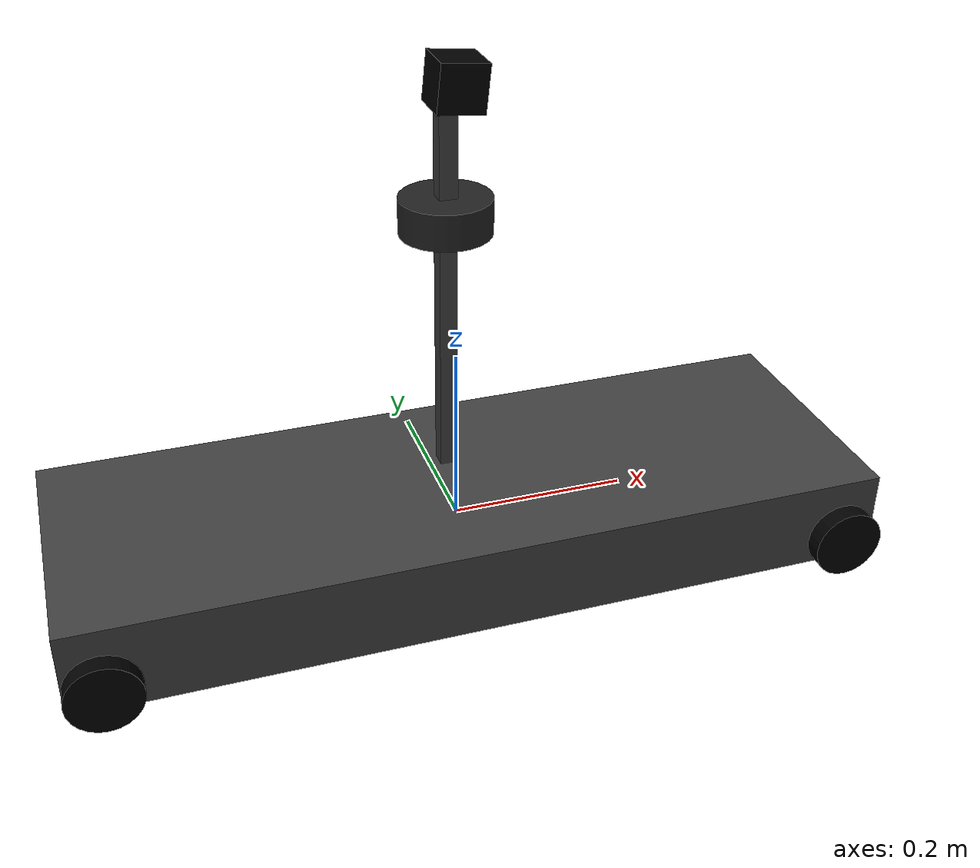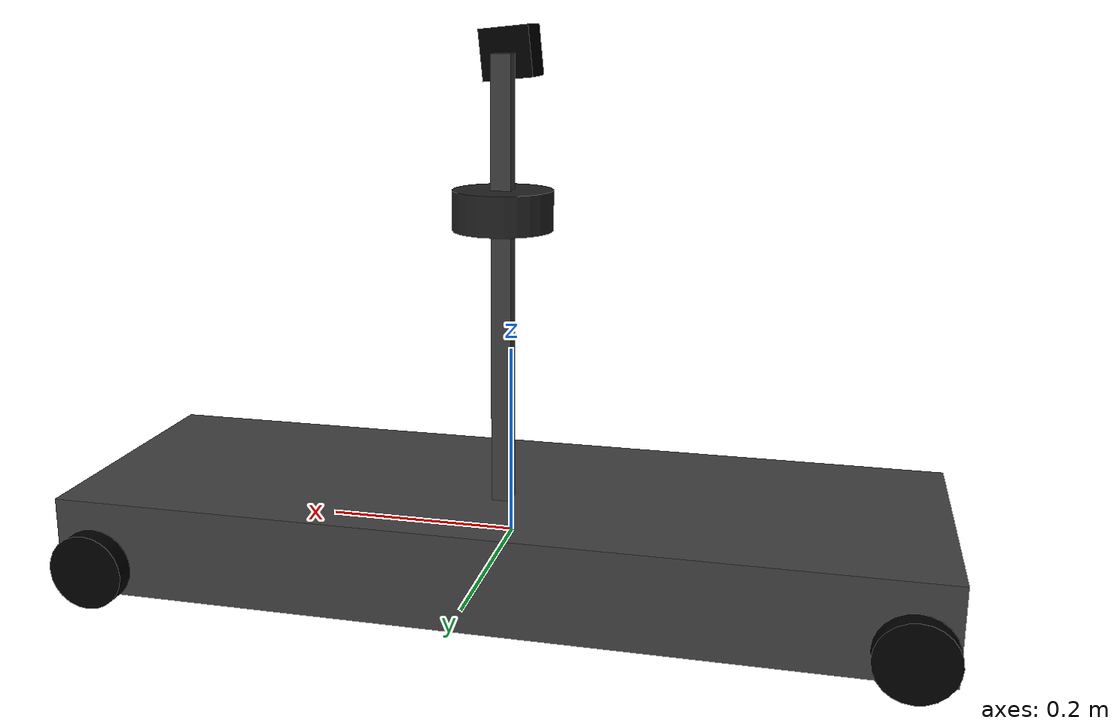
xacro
<?xml version="1.0"?>

<robot name="ackermann_steering_vehicle" xmlns:xacro="http://www.ros.org/wiki/xacro">

  <!-- Arguments -->
  <xacro:arg name="body_length" default="0.9" />
  <xacro:arg name="body_width" default="0.3" />
  <xacro:arg name="body_height" default="0.1" />
  <xacro:arg name="body_density" default="1000.0" />
  <xacro:arg name="wheel_radius" default="0.04" />
  <xacro:arg name="wheel_width" default="0.02" />
  <xacro:arg name="wheel_density" default="1000.0" />
  <xacro:arg name="max_steering_angle" default="0.6108" />
  <xacro:arg name="max_steering_angular_velocity" default="1.570796" />
  <xacro:arg name="max_steering_effort" default="1.0" />
  <xacro:arg name="max_velocity" default="1.0" />
  <xacro:arg name="max_effort" default="10.0" />
  <xacro:arg name="camera_box_size" default="0.05" />
  <xacro:arg name="camera_stick_size" default="0.02" />
  <xacro:arg name="camera_height" default="0.5" />
  <xacro:arg name="camera_pitch" default="0.1" />
  <xacro:arg name="camera_fov" default="90" />
  <xacro:arg name="camera_fps" default="30" />
  <xacro:arg name="image_width" default="640" />
  <xacro:arg name="image_height" default="480" />

  <!-- Mathematical Constants -->
  <xacro:property name="PI" value="3.14159265"/>

  <!-- Vehicle Properties -->
  <xacro:property name="body_length" value="$(arg body_length)"/>
  <xacro:property name="body_width" value="$(arg body_width)"/>
  <xacro:property name="body_height" value="$(arg body_height)"/>
  <xacro:property name="body_density" value="$(arg body_density)"/>
  <xacro:property name="wheel_radius" value="$(arg wheel_radius)"/>
  <xacro:property name="wheel_width" value="$(arg wheel_width)"/>
  <xacro:property name="wheel_density" value="$(arg wheel_density)"/>
  <xacro:property name="max_steering_angle" value="$(arg max_steering_angle)"/>
  <xacro:property name="max_steering_angular_velocity" value="$(arg max_steering_angular_velocity)"/>
  <xacro:property name="max_steering_effort" value="$(arg max_steering_effort)"/>
  <xacro:property name="max_velocity" value="$(arg max_velocity)"/>
  <xacro:property name="max_effort" value="$(arg max_effort)"/>
  <xacro:property name="camera_box_size" value="$(arg camera_box_size)"/>
  <xacro:property name="camera_stick_size" value="$(arg camera_stick_size)"/>
  <xacro:property name="camera_height" value="$(arg camera_height)"/>
  <xacro:property name="camera_pitch" value="$(arg camera_pitch)"/>
  <xacro:property name="camera_fov" value="$(arg camera_fov)"/>
  <xacro:property name="camera_fps" value="$(arg camera_fps)"/>
  <xacro:property name="image_width" value="$(arg image_width)"/>
  <xacro:property name="image_height" value="$(arg image_height)"/>

  <xacro:property name="body_mass" value="${body_density * body_length * body_height * body_width}"/>
  <xacro:property name="body_inertia_x" value="${1.0/12.0 * body_mass * (body_height*body_height + body_width*body_width)}"/>
  <xacro:property name="body_inertia_y" value="${1.0/12.0 * body_mass * (body_length*body_length + body_height*body_height)}"/>
  <xacro:property name="body_inertia_z" value="${1.0/12.0 * body_mass * (body_length*body_length + body_width*body_width)}"/>
  <xacro:property name="wheel_separation" value="${body_width + wheel_width}"/>
  <xacro:property name="wheel_offset" value="${body_length/2 - wheel_radius}"/>
  <xacro:property name="wheel_mass" value="${wheel_density * PI * wheel_radius * wheel_radius * wheel_width}"/>
  <xacro:property name="wheel_inertia_x" value="${1.0/12.0 * wheel_mass * (3*wheel_radius*wheel_radius + wheel_width*wheel_width)}"/>
  <xacro:property name="wheel_inertia_y" value="${1.0/12.0 * wheel_mass * (3*wheel_radius*wheel_radius + wheel_width*wheel_width)}"/>
  <xacro:property name="wheel_inertia_z" value="${1.0/2.0 * wheel_mass * wheel_radius * wheel_radius}"/>
  <xacro:property name="max_wheel_angular_velocity" value="${max_velocity / wheel_radius}"/>

  <!-- Links -->
  <xacro:include filename="inertial_macros.xacro" />
  <xacro:include filename="laser.xacro" />
  <xacro:include filename="lidar.xacro" />

  <!-- Body Link -->
  <link name="body_link">
    <visual>
      <origin xyz="0.0 0.0 0.0" rpy="0.0 0.0 0.0"/>
      <geometry>
        <box size="${body_length} ${body_width} ${body_height}"/>
      </geometry>
      <material name="body_material">
        <color rgba="0.25 0.25 0.25 1.0"/>
      </material>
    </visual>
    <collision>
      <origin xyz="0.0 0.0 0.0" rpy="0.0 0.0 0.0"/>
      <geometry>
        <box size="${body_length} ${body_width} ${body_height}"/>
      </geometry>
    </collision>
    <inertial>
      <mass value="${body_mass}"/>
      <inertia ixx="${body_inertia_x}" ixy="0.0" ixz="0.0" iyy="${body_inertia_y}" iyz="0" izz="${body_inertia_z}"/>
      <origin xyz="0 0 0" rpy="0 0 0"/>
    </inertial>
  </link>

  <!-- Front Left Wheel -->
  <link name="front_left_wheel_link">
    <visual>
      <origin xyz="0.0 0.0 0.0" rpy="1.570795 0.0 0.0"/>
      <geometry>
        <cylinder radius="${wheel_radius}" length="${wheel_width}"/>
      </geometry>
      <material name="wheel_material">
        <color rgba="0.0 0.0 0.0 1.0"/>
      </material>
    </visual>
    <collision>
      <origin xyz="0.0 0.0 0.0" rpy="1.570795 0.0 0.0"/>
      <geometry>
        <cylinder radius="${wheel_radius}" length="${wheel_width}"/>
      </geometry>
    </collision>
    <inertial>
      <mass value="${wheel_mass}"/>
      <inertia ixx="${wheel_inertia_x}" ixy="0.0" ixz="0.0" iyy="${wheel_inertia_y}" iyz="0" izz="${wheel_inertia_z}"/>
      <origin xyz="0.0 0.0 0.0" rpy="1.570795 0.0 0.0"/>
    </inertial>
  </link>

    <!-- Front Left Wheel Steering -->
  <link name="front_left_steering_link">
    <visual>
      <origin xyz="0.0 0.0 0.0" rpy="1.570795 0.0 0.0"/>
      <geometry>
        <cylinder length="0.001" radius="0.01"/>
      </geometry>
      <material name="wheel_material">
        <color rgba="0.0 0.0 0.0 1.0"/>
      </material>
    </visual>
    <collision>
      <origin xyz="0.0 0.0 0.0" rpy="1.570795 0.0 0.0"/>
      <geometry>
        <cylinder length="0.001" radius="0.01"/>
      </geometry>
    </collision>
    <inertial>
      <mass value="0.01"/>
      <inertia ixx="0.0" ixy="0.0" ixz="0.0" iyy="0.0" iyz="0.0" izz="0.0"/>
      <origin xyz="0.0 0.0 0.0" rpy="1.570795 0.0 0.0"/>
    </inertial>
  </link>

  <!-- Front Right Wheel -->
  <link name="front_right_wheel_link">
    <visual>
      <origin xyz="0.0 0.0 0.0" rpy="1.570795 0.0 0.0"/>
      <geometry>
        <cylinder radius="${wheel_radius}" length="${wheel_width}"/>
      </geometry>
      <material name="wheel_material">
        <color rgba="0.0 0.0 0.0 1.0"/>
      </material>
    </visual>
    <collision>
      <origin xyz="0.0 0.0 0.0" rpy="1.570795 0.0 0.0"/>
      <geometry>
        <cylinder radius="${wheel_radius}" length="${wheel_width}"/>
      </geometry>
    </collision>
    <inertial>
      <mass value="${wheel_mass}"/>
      <inertia ixx="${wheel_inertia_x}" ixy="0.0" ixz="0.0" iyy="${wheel_inertia_y}" iyz="0" izz="${wheel_inertia_z}"/>
      <origin xyz="0.0 0.0 0.0" rpy="1.570795 0.0 0.0"/>
    </inertial>
  </link>

  <!-- Front Right Wheel Steering -->
  <link name="front_right_steering_link">
    <visual>
      <origin xyz="0.0 0.0 0.0" rpy="1.570795 0.0 0.0"/>
      <geometry>
        <cylinder length="0.001" radius="0.01"/>
      </geometry>
      <material name="wheel_material">
        <color rgba="0.0 0.0 0.0 1.0"/>
      </material>
    </visual>
    <collision>
      <origin xyz="0.0 0.0 0.0" rpy="1.570795 0.0 0.0"/>
      <geometry>
        <cylinder length="0.001" radius="0.01"/>
      </geometry>
    </collision>
    <inertial>
      <mass value="0.01"/>
      <inertia ixx="0.0" ixy="0.0" ixz="0.0" iyy="0.0" iyz="0.0" izz="0.0"/>
      <origin xyz="0.0 0.0 0.0" rpy="1.570795 0.0 0.0"/>
    </inertial>
  </link>

  <!-- Rear Left Wheel -->
  <link name="rear_left_wheel_link">
    <visual>
      <origin xyz="0.0 0.0 0.0" rpy="1.570795 0.0 0.0"/>
      <geometry>
        <cylinder radius="${wheel_radius}" length="${wheel_width}"/>
      </geometry>
      <material name="wheel_material">
        <color rgba="0.0 0.0 0.0 1.0"/>
      </material>
    </visual>
    <collision>
      <origin xyz="0.0 0.0 0.0" rpy="1.570795 0.0 0.0"/>
      <geometry>
        <cylinder radius="${wheel_radius}" length="${wheel_width}"/>
      </geometry>
    </collision>
    <inertial>
      <mass value="2"/>
      <inertia ixx="${wheel_inertia_x}" ixy="0.0" ixz="0.0" iyy="${wheel_inertia_y}" iyz="0" izz="${wheel_inertia_z}"/>
      <origin xyz="0.0 0.0 0.0" rpy="1.570795 0.0 0.0"/>
    </inertial>
  </link>

  <!-- Rear Right Wheel -->
  <link name="rear_right_wheel_link">
    <visual>
      <origin xyz="0.0 0.0 0.0" rpy="1.570795 0.0 0.0"/>
      <geometry>
        <cylinder radius="${wheel_radius}" length="${wheel_width}"/>
      </geometry>
      <material name="wheel_material">
        <color rgba="0.0 0.0 0.0 1.0"/>
      </material>
    </visual>
    <collision>
      <origin xyz="0.0 0.0 0.0" rpy="1.570795 0.0 0.0"/>
      <geometry>
        <cylinder radius="${wheel_radius}" length="${wheel_width}"/>
      </geometry>
    </collision>
    <inertial>
      <mass value="2"/>
      <inertia ixx="${wheel_inertia_x}" ixy="0.0" ixz="0.0" iyy="${wheel_inertia_y}" iyz="0" izz="${wheel_inertia_z}"/>
      <origin xyz="0.0 0.0 0.0" rpy="1.570795 0.0 0.0"/>
    </inertial>
  </link>

  <!-- Camera Stick Link -->
  <link name="camera_stick_link">
    <collision>
      <origin xyz="0 0 0" rpy="0 0 0"/>
      <geometry>
        <box size="${camera_stick_size} ${camera_stick_size} ${camera_height}"/>
      </geometry>
    </collision>

    <visual>
      <origin xyz="0 0 0" rpy="0 0 0"/>
      <geometry>
        <box size="${camera_stick_size} ${camera_stick_size} ${camera_height}"/>
      </geometry>

      <material name="camera_stick_material">
        <color rgba="0.25 0.25 0.25 1.0"/>
      </material>
    </visual>

    <inertial>
      <mass value="1e-5" />
      <origin xyz="0 0 0" rpy="0 0 0"/>
      <inertia ixx="1e-6" ixy="0" ixz="0" iyy="1e-6" iyz="0" izz="1e-6" />
    </inertial>
  </link>

  <!-- Camera Link -->
  <link name="camera_link">
    <collision>
      <origin xyz="0 0 0" rpy="0 0 0"/>
      <geometry>
        <box size="${camera_box_size} ${camera_box_size} ${camera_box_size}"/>
      </geometry>
    </collision>

    <visual>
      <origin xyz="0 0 0" rpy="0 0 0"/>
      <geometry>
        <box size="${camera_box_size} ${camera_box_size} ${camera_box_size}"/>
      </geometry>

      <material name="camera_material">
        <color rgba="0.0 0.0 0.0 1.0"/>
      </material>
    </visual>

    <inertial>
      <mass value="1e-5" />
      <origin xyz="0 0 0" rpy="0 0 0"/>
      <inertia ixx="1e-6" ixy="0" ixz="0" iyy="1e-6" iyz="0" izz="1e-6" />
    </inertial>
  </link>

  <!-- Joints -->

  <!-- Front Left Steering Joint -->
  <joint name="front_left_steering_joint" type="revolute">
    <origin xyz="${wheel_offset} ${wheel_separation/2} -${wheel_radius/2}" rpy="0 0 0"/>
    <parent link="body_link"/>
    <child link="front_left_steering_link"/>
    <axis xyz="0 0 1"/>
    <limit effort="${max_steering_effort}" lower="${-max_steering_angle}" upper="${max_steering_angle}" velocity="${max_steering_angular_velocity}"/>
    <dynamics damping="0.1" friction="0.1"/>
  </joint>

  <!-- Front Left Wheel Joint -->
  <joint name="front_left_wheel_joint" type="continuous">
    <origin xyz="0 0 0" rpy="0 0 0"/>
    <parent link="front_left_steering_link"/>
    <child link="front_left_wheel_link"/>
    <axis xyz="0 1 0"/>
    <limit effort="${max_effort}" velocity="${max_wheel_angular_velocity}"/>
    <dynamics damping="0.1" friction="0.1"/>
  </joint>

  <!-- Front Right Steering Joint -->
  <joint name="front_right_steering_joint" type="revolute">
    <origin xyz="${wheel_offset} ${-wheel_separation/2} -${wheel_radius/2}" rpy="0 0 0"/>
    <parent link="body_link"/>
    <child link="front_right_steering_link"/>
    <axis xyz="0 0 1"/>
    <limit effort="${max_steering_effort}" lower="${-max_steering_angle}" upper="${max_steering_angle}" velocity="${max_steering_angular_velocity}"/>
    <dynamics damping="0.1" friction="0.1"/>
  </joint>

  <!-- Front Right Wheel Joint -->
  <joint name="front_right_wheel_joint" type="continuous">
    <origin xyz="0 0 0" rpy="0 0 0"/>
    <parent link="front_right_steering_link"/>
    <child link="front_right_wheel_link"/>
    <axis xyz="0 1 0"/>
    <limit effort="${max_effort}" velocity="${max_wheel_angular_velocity}"/>
    <dynamics damping="0.1" friction="0.1"/>
  </joint>

  <!-- Rear Left Wheel Joint -->
  <joint name="rear_left_wheel_joint" type="continuous">
    <origin xyz="-${wheel_offset} ${wheel_separation/2} -${wheel_radius/2}" rpy="0 0 0"/>
    <parent link="body_link"/>
    <child link="rear_left_wheel_link"/>
    <axis xyz="0 1 0"/>
    <limit effort="${max_effort}" velocity="${max_wheel_angular_velocity}"/>
    <dynamics damping="0.1" friction="0.1"/>
  </joint>

  <!-- Rear Right Wheel Joint -->
  <joint name="rear_right_wheel_joint" type="continuous">
    <origin xyz="-${wheel_offset} ${-wheel_separation/2} -${wheel_radius/2}" rpy="0 0 0"/>
    <parent link="body_link"/>
    <child link="rear_right_wheel_link"/>
    <axis xyz="0 1 0"/>
    <limit effort="${max_effort}" velocity="${max_wheel_angular_velocity}"/>
    <dynamics damping="0.1" friction="0.1"/>
  </joint>

  <!-- Camera Stick Joint -->
  <joint name="camera_stick_joint" type="fixed">
    <axis xyz="0 1 0" />
    <origin xyz="0 ${camera_box_size/2 + camera_stick_size/2} ${camera_height/2}" rpy="0.0 0.0 0.0"/>
    <parent link="body_link"/>
    <child link="camera_stick_link"/>
  </joint>

  <!-- Camera Joint -->
  <joint name="camera_joint" type="fixed">
    <axis xyz="0 1 0" />
    <origin xyz="0.0 ${-camera_box_size/2 - camera_stick_size/2} ${camera_height/2}" rpy="0 ${camera_pitch} 0"/>
    <origin xyz="0.0 0.0 0.0" rpy="0 ${camera_pitch} 0"/>
    <parent link="camera_stick_link"/>
    <child link="camera_link"/>
  </joint>

  <!-- Gazebo Parameters -->
  <gazebo reference="body_link">
    <mu1>0.0001</mu1>
    <mu2>0.0001</mu2>
  </gazebo>

  <gazebo reference="front_right_wheel_link">
    <mu1>100.0</mu1>
    <mu2>100.0</mu2>
  </gazebo>

  <gazebo reference="front_left_wheel_link">
    <mu1>100.0</mu1>
    <mu2>100.0</mu2>
  </gazebo>

  <gazebo reference="rear_right_wheel_link">
    <mu1>100.0</mu1>
    <mu2>100.0</mu2>
  </gazebo>

  <gazebo reference="rear_left_wheel_link">
    <mu1>100.0</mu1>
    <mu2>100.0</mu2>
  </gazebo>

  <!-- Gazebo Control -->
  <ros2_control name="control" type="system">
    <hardware>
      <plugin>gz_ros2_control/GazeboSimSystem</plugin>
    </hardware>

    <joint name="front_left_steering_joint">
      <command_interface name="position">
        <param name="min">${-max_steering_angle}</param>
        <param name="max">${max_steering_angle}</param>
      </command_interface>

      <state_interface name="position"/>
      <state_interface name="velocity"/>
      <state_interface name="effort"/>
    </joint>

    <joint name="front_right_steering_joint">
      <command_interface name="position">
        <param name="min">${-max_steering_angle}</param>
        <param name="max">${max_steering_angle}</param>
      </command_interface>

      <state_interface name="position"/>
      <state_interface name="velocity"/>
      <state_interface name="effort"/>
    </joint>

    <joint name="rear_left_wheel_joint">
      <command_interface name="velocity">
        <param name="min">${-max_wheel_angular_velocity}</param>
        <param name="max">${max_wheel_angular_velocity}</param>
      </command_interface>

      <state_interface name="position"/>
      <state_interface name="velocity"/>
      <state_interface name="effort"/>
    </joint>

    <joint name="rear_right_wheel_joint">
      <command_interface name="velocity">
        <param name="min">${-max_wheel_angular_velocity}</param>
        <param name="max">${max_wheel_angular_velocity}</param>
      </command_interface>

      <state_interface name="position"/>
      <state_interface name="velocity"/>
      <state_interface name="effort"/>
    </joint>
  </ros2_control>

  <!-- Gazebo Plugins -->
  <gazebo>
    <plugin filename="gz-sim-joint-state-publisher-system" name="gz::sim::systems::JointStatePublisher">
      <topic>joint_states</topic>
      <joint_name>front_left_steering_joint</joint_name>
      <joint_name>front_right_steering_joint</joint_name>
      <joint_name>front_left_wheel_joint</joint_name>
      <joint_name>front_right_wheel_joint</joint_name>
      <joint_name>rear_left_wheel_joint</joint_name>
      <joint_name>rear_right_wheel_joint</joint_name>
    </plugin>

    <plugin filename="gz_ros2_control-system" name="gz_ros2_control::GazeboSimROS2ControlPlugin">
      <parameters>$(find gazebo_ackermann_steering_vehicle)/config/gz_ros2_control.yaml</parameters>
    </plugin>

    <plugin filename="gz-sim-sensors-system" name="gz::sim::systems::Sensors">
      <render_engine>ogre2</render_engine>
    </plugin>
  </gazebo>

  <!-- Camera -->
  <gazebo reference="camera_link">
    <sensor type="camera" name="vehicle_front_camera">
      <update_rate>${camera_fps}</update_rate>
      <visualize>true</visualize>
      <topic>camera</topic>

      <camera name="head">
        <horizontal_fov>${camera_fov}</horizontal_fov>
        <image>
          <width>${image_width}</width>
          <height>${image_height}</height>
          <format>R8G8B8</format>
        </image>
        <clip>
          <near>0.02</near>
          <far>300</far>
        </clip>
        <noise>
          <type>gaussian</type>
          <mean>0.0</mean>
          <stddev>0.007</stddev>
        </noise>
      </camera>
      <plugin name="camera_controller" filename="libgazebo_ros_camera.so">
        <alwaysOn>true</alwaysOn>
        <updateRate>0.0</updateRate>
        <cameraName>vehicle_front_camera</cameraName>
        <frameName>camera_link</frameName>
        <hackBaseline>0.07</hackBaseline>
        <distortionK1>0.0</distortionK1>
        <distortionK2>0.0</distortionK2>
        <distortionK3>0.0</distortionK3>
        <distortionT1>0.0</distortionT1>
        <distortionT2>0.0</distortionT2>
      </plugin>
    </sensor>
  </gazebo>

</robot>

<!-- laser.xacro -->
<robot xmlns:xacro="http://www.ros.org/wiki/xacro" >
   <joint name="laser_joint" type="fixed">
     <parent link="body_link"/>
     <child link="laser_frame"/>
     <origin xyz="0.45 0 0.0" rpy="0 0 0"/>
   </joint>
   <link name="laser_frame">
      <visual>
         <origin xyz="0 0 0"/>
         <geometry>
            <cylinder length="0.02" radius="0.02"/>
         </geometry>
         <material name="laser_material">
            <color rgba="0.13 0.13 0.13 1.0"/>
         </material>
      </visual>
      <collision>
         <origin xyz="0 0 0"/>
         <geometry>
            <cylinder length="0.02" radius="0.02"/>
         </geometry>
      </collision>
      <xacro:inertial_cylinder mass="0.1" length="0.02" radius="0.02">
         <origin xyz="0 0 0" rpy="0 0 0"/>
      </xacro:inertial_cylinder>
   </link>

   <!-- 2D Lidar New Gazebo Sensor Plugin  -->
   <gazebo reference="laser_frame">
      <sensor name="laser" type="gpu_lidar">
         <pose> 0 0 0 0 0 0 </pose>
         <always_on>true</always_on>
         <visualize>true</visualize>
         <update_rate>10</update_rate>
         <topic>scan</topic>
         <gz_frame_id>laser_frame</gz_frame_id>
         <lidar>
            <scan>
               <horizontal>
               <samples>360</samples>
               <min_angle>-3.14</min_angle>
               <max_angle>3.14</max_angle>
               </horizontal>
            </scan>
            <range>
               <min>0.3</min>
               <max>12</max>
            </range>
         </lidar>
      </sensor>
   </gazebo>
</robot>

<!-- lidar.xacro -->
<robot xmlns:xacro="http://www.ros.org/wiki/xacro" >
   <joint name="lidar_joint" type="fixed">
     <parent link="camera_stick_link"/>
     <child link="lidar_frame"/>
     <origin xyz="0.0 0 0.1" rpy="0 0 0"/>
   </joint>
   <link name="lidar_frame">
      <visual>
         <origin xyz="0 0 0"/>
         <geometry>
            <cylinder length="0.04" radius="0.05"/>
         </geometry>
         <material name="laser_material">
            <color rgba="0.13 0.13 0.13 1.0"/>
         </material>
      </visual>
      <collision>
         <origin xyz="0 0 0"/>
         <geometry>
            <cylinder length="0.04" radius="0.05"/>
         </geometry>
      </collision>
      <xacro:inertial_cylinder mass="0.1" length="0.04" radius="0.05">
         <origin xyz="0 0 0" rpy="0 0 0"/>
      </xacro:inertial_cylinder>
   </link>

   <!-- 2D Lidar New Gazebo Sensor Plugin  -->
   <gazebo reference="lidar_frame">
      <sensor name="lidar_3d" type="gpu_lidar">
         <pose> 0 0 0 0 0 0 </pose>
         <always_on>true</always_on>
         <visualize>true</visualize>
         <update_rate>10</update_rate>
         <topic>scan_3d</topic>
         <gz_frame_id>lidar_frame</gz_frame_id>
         <lidar>
            <scan>
               <horizontal>
               <samples>360</samples>
               <min_angle>-3.14</min_angle>
               <max_angle>3.14</max_angle>
               </horizontal>
               <vertical>
                 <samples>32</samples>
                 <min_angle>-0.5353</min_angle>
                 <max_angle>0.1862</max_angle>
               </vertical>
            </scan>
            <range>
               <min>0.3</min>
               <max>12</max>
            </range>
         </lidar>
      </sensor>
   </gazebo>
</robot>
